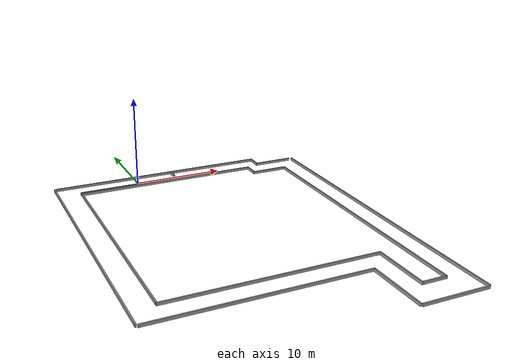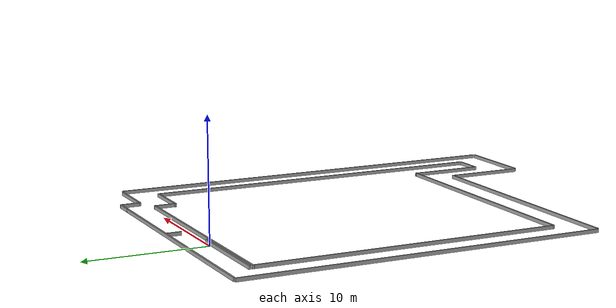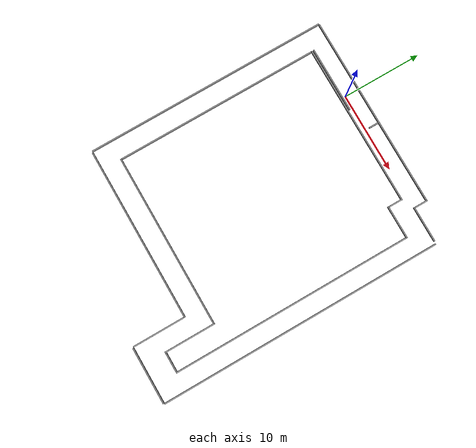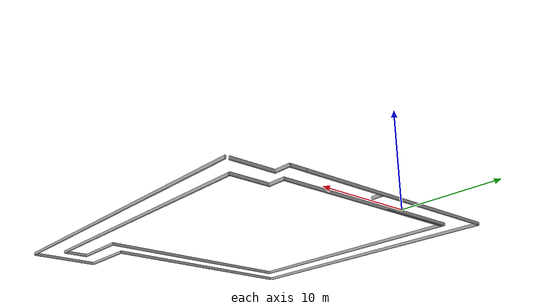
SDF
<?xml version='1.0'?>
<sdf version='1.6'>
  <model name='unit_box_map7'>
    <link name='link'>
      <pose frame=''>3.45997 -0.623895 0 0 -0 0</pose>
      <inertial>
        <mass>1</mass>
        <inertia>
          <ixx>0.166667</ixx>
          <ixy>0</ixy>
          <ixz>0</ixz>
          <iyy>0.166667</iyy>
          <iyz>0</iyz>
          <izz>0.166667</izz>
        </inertia>
        <pose frame=''>0 0 0 0 -0 0</pose>
      </inertial>
      <self_collide>0</self_collide>
      <kinematic>0</kinematic>
      <visual name='visual'>
        <geometry>
          <box>
            <size>20.4 0.15 0.3</size>
          </box>
        </geometry>
        <material>
          <script>
            <name>Gazebo/Grey</name>
            <uri>file://media/materials/scripts/gazebo.material</uri>
          </script>
          <ambient>0.3 0.3 0.3 1</ambient>
          <diffuse>0.7 0.7 0.7 1</diffuse>
          <specular>0.01 0.01 0.01 1</specular>
          <emissive>0 0 0 1</emissive>
          <shader type='vertex'>
            <normal_map>__default__</normal_map>
          </shader>
        </material>
        <pose frame=''>0 0 0 0 -0 0</pose>
        <cast_shadows>1</cast_shadows>
        <transparency>0</transparency>
      </visual>
      <collision name='collision'>
        <laser_retro>0</laser_retro>
        <max_contacts>10</max_contacts>
        <pose frame=''>0 0 0 0 -0 0</pose>
        <geometry>
          <box>
            <size>20.4 0.15 0.3</size>
          </box>
        </geometry>
        <surface>
          <friction>
            <ode>
              <mu>1</mu>
              <mu2>1</mu2>
              <fdir1>0 0 0</fdir1>
              <slip1>0</slip1>
              <slip2>0</slip2>
            </ode>
            <torsional>
              <coefficient>1</coefficient>
              <patch_radius>0</patch_radius>
              <surface_radius>0</surface_radius>
              <use_patch_radius>1</use_patch_radius>
              <ode>
                <slip>0</slip>
              </ode>
            </torsional>
          </friction>
          <bounce>
            <restitution_coefficient>0</restitution_coefficient>
            <threshold>1e+06</threshold>
          </bounce>
          <contact>
            <collide_without_contact>0</collide_without_contact>
            <collide_without_contact_bitmask>1</collide_without_contact_bitmask>
            <collide_bitmask>1</collide_bitmask>
            <ode>
              <soft_cfm>0</soft_cfm>
              <soft_erp>0.2</soft_erp>
              <kp>1e+13</kp>
              <kd>1</kd>
              <max_vel>0.01</max_vel>
              <min_depth>0</min_depth>
            </ode>
            <bullet>
              <split_impulse>1</split_impulse>
              <split_impulse_penetration_threshold>-0.01</split_impulse_penetration_threshold>
              <soft_cfm>0</soft_cfm>
              <soft_erp>0.2</soft_erp>
              <kp>1e+13</kp>
              <kd>1</kd>
            </bullet>
          </contact>
        </surface>
      </collision>
    </link>
    <link name='link_clone'>
      <pose frame=''>2.29271 1.80543 0 0 -0 0</pose>
      <inertial>
        <mass>1</mass>
        <inertia>
          <ixx>0.166667</ixx>
          <ixy>0</ixy>
          <ixz>0</ixz>
          <iyy>0.166667</iyy>
          <iyz>0</iyz>
          <izz>0.166667</izz>
        </inertia>
        <pose frame=''>0 0 0 0 -0 0</pose>
      </inertial>
      <self_collide>0</self_collide>
      <kinematic>0</kinematic>
      <visual name='visual'>
        <geometry>
          <box>
            <size>22.7 0.15 0.3</size>
          </box>
        </geometry>
        <material>
          <script>
            <name>Gazebo/Grey</name>
            <uri>file://media/materials/scripts/gazebo.material</uri>
          </script>
          <ambient>0.3 0.3 0.3 1</ambient>
          <diffuse>0.7 0.7 0.7 1</diffuse>
          <specular>0.01 0.01 0.01 1</specular>
          <emissive>0 0 0 1</emissive>
          <shader type='vertex'>
            <normal_map>__default__</normal_map>
          </shader>
        </material>
        <pose frame=''>0 0 0 0 -0 0</pose>
        <cast_shadows>1</cast_shadows>
        <transparency>0</transparency>
      </visual>
      <collision name='collision'>
        <laser_retro>0</laser_retro>
        <max_contacts>10</max_contacts>
        <pose frame=''>0 0 0 0 -0 0</pose>
        <geometry>
          <box>
            <size>22.7 0.15 0.3</size>
          </box>
        </geometry>
        <surface>
          <friction>
            <ode>
              <mu>1</mu>
              <mu2>1</mu2>
              <fdir1>0 0 0</fdir1>
              <slip1>0</slip1>
              <slip2>0</slip2>
            </ode>
            <torsional>
              <coefficient>1</coefficient>
              <patch_radius>0</patch_radius>
              <surface_radius>0</surface_radius>
              <use_patch_radius>1</use_patch_radius>
              <ode>
                <slip>0</slip>
              </ode>
            </torsional>
          </friction>
          <bounce>
            <restitution_coefficient>0</restitution_coefficient>
            <threshold>1e+06</threshold>
          </bounce>
          <contact>
            <collide_without_contact>0</collide_without_contact>
            <collide_without_contact_bitmask>1</collide_without_contact_bitmask>
            <collide_bitmask>1</collide_bitmask>
            <ode>
              <soft_cfm>0</soft_cfm>
              <soft_erp>0.2</soft_erp>
              <kp>1e+13</kp>
              <kd>1</kd>
              <max_vel>0.01</max_vel>
              <min_depth>0</min_depth>
            </ode>
            <bullet>
              <split_impulse>1</split_impulse>
              <split_impulse_penetration_threshold>-0.01</split_impulse_penetration_threshold>
              <soft_cfm>0</soft_cfm>
              <soft_erp>0.2</soft_erp>
              <kp>1e+13</kp>
              <kd>1</kd>
            </bullet>
          </contact>
        </surface>
      </collision>
    </link>
    <link name='link_clone_0'>
      <pose frame=''>-2.56945 -0.360296 0 0 -0 0</pose>
      <inertial>
        <mass>1</mass>
        <inertia>
          <ixx>0.166667</ixx>
          <ixy>0</ixy>
          <ixz>0</ixz>
          <iyy>0.166667</iyy>
          <iyz>0</iyz>
          <izz>0.166667</izz>
        </inertia>
        <pose frame=''>0 0 0 0 -0 0</pose>
      </inertial>
      <self_collide>0</self_collide>
      <kinematic>0</kinematic>
      <visual name='visual'>
        <geometry>
          <box>
            <size>8.35 0.15 0.3</size>
          </box>
        </geometry>
        <material>
          <script>
            <name>Gazebo/Grey</name>
            <uri>file://media/materials/scripts/gazebo.material</uri>
          </script>
          <ambient>0.3 0.3 0.3 1</ambient>
          <diffuse>0.7 0.7 0.7 1</diffuse>
          <specular>0.01 0.01 0.01 1</specular>
          <emissive>0 0 0 1</emissive>
          <shader type='vertex'>
            <normal_map>__default__</normal_map>
          </shader>
        </material>
        <pose frame=''>0 0 0 0 -0 0</pose>
        <cast_shadows>1</cast_shadows>
        <transparency>0</transparency>
      </visual>
      <collision name='collision'>
        <laser_retro>0</laser_retro>
        <max_contacts>10</max_contacts>
        <pose frame=''>0 0 0 0 -0 0</pose>
        <geometry>
          <box>
            <size>8.35 0.15 0.3</size>
          </box>
        </geometry>
        <surface>
          <friction>
            <ode>
              <mu>1</mu>
              <mu2>1</mu2>
              <fdir1>0 0 0</fdir1>
              <slip1>0</slip1>
              <slip2>0</slip2>
            </ode>
            <torsional>
              <coefficient>1</coefficient>
              <patch_radius>0</patch_radius>
              <surface_radius>0</surface_radius>
              <use_patch_radius>1</use_patch_radius>
              <ode>
                <slip>0</slip>
              </ode>
            </torsional>
          </friction>
          <bounce>
            <restitution_coefficient>0</restitution_coefficient>
            <threshold>1e+06</threshold>
          </bounce>
          <contact>
            <collide_without_contact>0</collide_without_contact>
            <collide_without_contact_bitmask>1</collide_without_contact_bitmask>
            <collide_bitmask>1</collide_bitmask>
            <ode>
              <soft_cfm>0</soft_cfm>
              <soft_erp>0.2</soft_erp>
              <kp>1e+13</kp>
              <kd>1</kd>
              <max_vel>0.01</max_vel>
              <min_depth>0</min_depth>
            </ode>
            <bullet>
              <split_impulse>1</split_impulse>
              <split_impulse_penetration_threshold>-0.01</split_impulse_penetration_threshold>
              <soft_cfm>0</soft_cfm>
              <soft_erp>0.2</soft_erp>
              <kp>1e+13</kp>
              <kd>1</kd>
            </bullet>
          </contact>
        </surface>
      </collision>
    </link>
    <link name='link_clone_0_clone'>
      <pose frame=''>4.6261 1.11574 0 0 -0 1.5707</pose>
      <inertial>
        <mass>1</mass>
        <inertia>
          <ixx>0.166667</ixx>
          <ixy>0</ixy>
          <ixz>0</ixz>
          <iyy>0.166667</iyy>
          <iyz>0</iyz>
          <izz>0.166667</izz>
        </inertia>
        <pose frame=''>0 0 0 0 -0 0</pose>
      </inertial>
      <self_collide>0</self_collide>
      <kinematic>0</kinematic>
      <visual name='visual'>
        <geometry>
          <box>
            <size>1.22 0.15 0.3</size>
          </box>
        </geometry>
        <material>
          <script>
            <name>Gazebo/Grey</name>
            <uri>file://media/materials/scripts/gazebo.material</uri>
          </script>
          <ambient>0.3 0.3 0.3 1</ambient>
          <diffuse>0.7 0.7 0.7 1</diffuse>
          <specular>0.01 0.01 0.01 1</specular>
          <emissive>0 0 0 1</emissive>
          <shader type='vertex'>
            <normal_map>__default__</normal_map>
          </shader>
        </material>
        <pose frame=''>0 0 0 0 -0 0</pose>
        <cast_shadows>1</cast_shadows>
        <transparency>0</transparency>
      </visual>
      <collision name='collision'>
        <laser_retro>0</laser_retro>
        <max_contacts>10</max_contacts>
        <pose frame=''>0 0 0 0 -0 0</pose>
        <geometry>
          <box>
            <size>1.22 0.15 0.3</size>
          </box>
        </geometry>
        <surface>
          <friction>
            <ode>
              <mu>1</mu>
              <mu2>1</mu2>
              <fdir1>0 0 0</fdir1>
              <slip1>0</slip1>
              <slip2>0</slip2>
            </ode>
            <torsional>
              <coefficient>1</coefficient>
              <patch_radius>0</patch_radius>
              <surface_radius>0</surface_radius>
              <use_patch_radius>1</use_patch_radius>
              <ode>
                <slip>0</slip>
              </ode>
            </torsional>
          </friction>
          <bounce>
            <restitution_coefficient>0</restitution_coefficient>
            <threshold>1e+06</threshold>
          </bounce>
          <contact>
            <collide_without_contact>0</collide_without_contact>
            <collide_without_contact_bitmask>1</collide_without_contact_bitmask>
            <collide_bitmask>1</collide_bitmask>
            <ode>
              <soft_cfm>0</soft_cfm>
              <soft_erp>0.2</soft_erp>
              <kp>1e+13</kp>
              <kd>1</kd>
              <max_vel>0.01</max_vel>
              <min_depth>0</min_depth>
            </ode>
            <bullet>
              <split_impulse>1</split_impulse>
              <split_impulse_penetration_threshold>-0.01</split_impulse_penetration_threshold>
              <soft_cfm>0</soft_cfm>
              <soft_erp>0.2</soft_erp>
              <kp>1e+13</kp>
              <kd>1</kd>
            </bullet>
          </contact>
        </surface>
      </collision>
    </link>
    <link name='link_clone_0_clone_0'>
      <pose frame=''>4.18838 -26.4536 0 0 -0 0</pose>
      <inertial>
        <mass>1</mass>
        <inertia>
          <ixx>0.166667</ixx>
          <ixy>0</ixy>
          <ixz>0</ixz>
          <iyy>0.166667</iyy>
          <iyz>0</iyz>
          <izz>0.166667</izz>
        </inertia>
        <pose frame=''>0 0 0 0 -0 0</pose>
      </inertial>
      <self_collide>0</self_collide>
      <kinematic>0</kinematic>
      <gravity>1</gravity>
      <visual name='visual'>
        <geometry>
          <box>
            <size>21.8 0.15 0.3</size>
          </box>
        </geometry>
        <material>
          <script>
            <name>Gazebo/Grey</name>
            <uri>file://media/materials/scripts/gazebo.material</uri>
          </script>
          <ambient>0.3 0.3 0.3 1</ambient>
          <diffuse>0.7 0.7 0.7 1</diffuse>
          <specular>0.01 0.01 0.01 1</specular>
          <emissive>0 0 0 1</emissive>
          <shader type='vertex'>
            <normal_map>__default__</normal_map>
          </shader>
        </material>
        <pose frame=''>0 0 0 0 -0 0</pose>
        <cast_shadows>1</cast_shadows>
        <transparency>0</transparency>
      </visual>
      <collision name='collision'>
        <laser_retro>0</laser_retro>
        <max_contacts>10</max_contacts>
        <pose frame=''>0 0 0 0 -0 0</pose>
        <geometry>
          <box>
            <size>21.8 0.15 0.3</size>
          </box>
        </geometry>
        <surface>
          <friction>
            <ode>
              <mu>1</mu>
              <mu2>1</mu2>
              <fdir1>0 0 0</fdir1>
              <slip1>0</slip1>
              <slip2>0</slip2>
            </ode>
            <torsional>
              <coefficient>1</coefficient>
              <patch_radius>0</patch_radius>
              <surface_radius>0</surface_radius>
              <use_patch_radius>1</use_patch_radius>
              <ode>
                <slip>0</slip>
              </ode>
            </torsional>
          </friction>
          <bounce>
            <restitution_coefficient>0</restitution_coefficient>
            <threshold>1e+06</threshold>
          </bounce>
          <contact>
            <collide_without_contact>0</collide_without_contact>
            <collide_without_contact_bitmask>1</collide_without_contact_bitmask>
            <collide_bitmask>1</collide_bitmask>
            <ode>
              <soft_cfm>0</soft_cfm>
              <soft_erp>0.2</soft_erp>
              <kp>1e+13</kp>
              <kd>1</kd>
              <max_vel>0.01</max_vel>
              <min_depth>0</min_depth>
            </ode>
            <bullet>
              <split_impulse>1</split_impulse>
              <split_impulse_penetration_threshold>-0.01</split_impulse_penetration_threshold>
              <soft_cfm>0</soft_cfm>
              <soft_erp>0.2</soft_erp>
              <kp>1e+13</kp>
              <kd>1</kd>
            </bullet>
          </contact>
        </surface>
      </collision>
    </link>
    <link name='link_clone_0_clone_0_clone'>
      <pose frame=''>14.4458 1.80734 0 0 -0 0</pose>
      <inertial>
        <mass>1</mass>
        <inertia>
          <ixx>0.166667</ixx>
          <ixy>0</ixy>
          <ixz>0</ixz>
          <iyy>0.166667</iyy>
          <iyz>0</iyz>
          <izz>0.166667</izz>
        </inertia>
        <pose frame=''>0 0 0 0 -0 0</pose>
      </inertial>
      <self_collide>0</self_collide>
      <kinematic>0</kinematic>
      <visual name='visual'>
        <geometry>
          <box>
            <size>1.6 0.15 0.3</size>
          </box>
        </geometry>
        <material>
          <script>
            <name>Gazebo/Grey</name>
            <uri>file://media/materials/scripts/gazebo.material</uri>
          </script>
          <ambient>0.3 0.3 0.3 1</ambient>
          <diffuse>0.7 0.7 0.7 1</diffuse>
          <specular>0.01 0.01 0.01 1</specular>
          <emissive>0 0 0 1</emissive>
          <shader type='vertex'>
            <normal_map>__default__</normal_map>
          </shader>
        </material>
        <pose frame=''>0 0 0 0 -0 0</pose>
        <cast_shadows>1</cast_shadows>
        <transparency>0</transparency>
      </visual>
      <collision name='collision'>
        <laser_retro>0</laser_retro>
        <max_contacts>10</max_contacts>
        <pose frame=''>0 0 0 0 -0 0</pose>
        <geometry>
          <box>
            <size>1.6 0.15 0.3</size>
          </box>
        </geometry>
        <surface>
          <friction>
            <ode>
              <mu>1</mu>
              <mu2>1</mu2>
              <fdir1>0 0 0</fdir1>
              <slip1>0</slip1>
              <slip2>0</slip2>
            </ode>
            <torsional>
              <coefficient>1</coefficient>
              <patch_radius>0</patch_radius>
              <surface_radius>0</surface_radius>
              <use_patch_radius>1</use_patch_radius>
              <ode>
                <slip>0</slip>
              </ode>
            </torsional>
          </friction>
          <bounce>
            <restitution_coefficient>0</restitution_coefficient>
            <threshold>1e+06</threshold>
          </bounce>
          <contact>
            <collide_without_contact>0</collide_without_contact>
            <collide_without_contact_bitmask>1</collide_without_contact_bitmask>
            <collide_bitmask>1</collide_bitmask>
            <ode>
              <soft_cfm>0</soft_cfm>
              <soft_erp>0.2</soft_erp>
              <kp>1e+13</kp>
              <kd>1</kd>
              <max_vel>0.01</max_vel>
              <min_depth>0</min_depth>
            </ode>
            <bullet>
              <split_impulse>1</split_impulse>
              <split_impulse_penetration_threshold>-0.01</split_impulse_penetration_threshold>
              <soft_cfm>0</soft_cfm>
              <soft_erp>0.2</soft_erp>
              <kp>1e+13</kp>
              <kd>1</kd>
            </bullet>
          </contact>
        </surface>
      </collision>
    </link>
    <link name='link_clone_0_clone_0_clone_clone'>
      <pose frame=''>15.7693 -2.40821 0 0 -0 0</pose>
      <inertial>
        <mass>1</mass>
        <inertia>
          <ixx>0.166667</ixx>
          <ixy>0</ixy>
          <ixz>0</ixz>
          <iyy>0.166667</iyy>
          <iyz>0</iyz>
          <izz>0.166667</izz>
        </inertia>
        <pose frame=''>0 0 0 0 -0 0</pose>
      </inertial>
      <self_collide>0</self_collide>
      <kinematic>0</kinematic>
      <visual name='visual'>
        <geometry>
          <box>
            <size>4.21 0.15 0.3</size>
          </box>
        </geometry>
        <material>
          <script>
            <name>Gazebo/Grey</name>
            <uri>file://media/materials/scripts/gazebo.material</uri>
          </script>
          <ambient>0.3 0.3 0.3 1</ambient>
          <diffuse>0.7 0.7 0.7 1</diffuse>
          <specular>0.01 0.01 0.01 1</specular>
          <emissive>0 0 0 1</emissive>
          <shader type='vertex'>
            <normal_map>__default__</normal_map>
          </shader>
        </material>
        <pose frame=''>0 0 0 0 -0 0</pose>
        <cast_shadows>1</cast_shadows>
        <transparency>0</transparency>
      </visual>
      <collision name='collision'>
        <laser_retro>0</laser_retro>
        <max_contacts>10</max_contacts>
        <pose frame=''>0 0 0 0 -0 0</pose>
        <geometry>
          <box>
            <size>4.21 0.15 0.3</size>
          </box>
        </geometry>
        <surface>
          <friction>
            <ode>
              <mu>1</mu>
              <mu2>1</mu2>
              <fdir1>0 0 0</fdir1>
              <slip1>0</slip1>
              <slip2>0</slip2>
            </ode>
            <torsional>
              <coefficient>1</coefficient>
              <patch_radius>0</patch_radius>
              <surface_radius>0</surface_radius>
              <use_patch_radius>1</use_patch_radius>
              <ode>
                <slip>0</slip>
              </ode>
            </torsional>
          </friction>
          <bounce>
            <restitution_coefficient>0</restitution_coefficient>
            <threshold>1e+06</threshold>
          </bounce>
          <contact>
            <collide_without_contact>0</collide_without_contact>
            <collide_without_contact_bitmask>1</collide_without_contact_bitmask>
            <collide_bitmask>1</collide_bitmask>
            <ode>
              <soft_cfm>0</soft_cfm>
              <soft_erp>0.2</soft_erp>
              <kp>1e+13</kp>
              <kd>1</kd>
              <max_vel>0.01</max_vel>
              <min_depth>0</min_depth>
            </ode>
            <bullet>
              <split_impulse>1</split_impulse>
              <split_impulse_penetration_threshold>-0.01</split_impulse_penetration_threshold>
              <soft_cfm>0</soft_cfm>
              <soft_erp>0.2</soft_erp>
              <kp>1e+13</kp>
              <kd>1</kd>
            </bullet>
          </contact>
        </surface>
      </collision>
    </link>
    <link name='link_clone_0_clone_0_clone_clone_clone'>
      <pose frame=''>17.5173 0.14167 0 0 -0 0</pose>
      <inertial>
        <mass>0.716393</mass>
        <inertia>
          <ixx>0.119399</ixx>
          <ixy>0</ixy>
          <ixz>0</ixz>
          <iyy>0.0903386</iyy>
          <iyz>0</iyz>
          <izz>0.0903386</izz>
        </inertia>
        <pose frame=''>0 0 0 0 -0 0</pose>
      </inertial>
      <self_collide>0</self_collide>
      <kinematic>0</kinematic>
      <visual name='visual'>
        <geometry>
          <box>
            <size>4.53477 0.15 0.3</size>
          </box>
        </geometry>
        <material>
          <script>
            <name>Gazebo/Grey</name>
            <uri>file://media/materials/scripts/gazebo.material</uri>
          </script>
          <ambient>0.3 0.3 0.3 1</ambient>
          <diffuse>0.7 0.7 0.7 1</diffuse>
          <specular>0.01 0.01 0.01 1</specular>
          <emissive>0 0 0 1</emissive>
          <shader type='vertex'>
            <normal_map>__default__</normal_map>
          </shader>
        </material>
        <pose frame=''>0 0 0 0 -0 0</pose>
        <cast_shadows>1</cast_shadows>
        <transparency>0</transparency>
      </visual>
      <collision name='collision'>
        <laser_retro>0</laser_retro>
        <max_contacts>10</max_contacts>
        <pose frame=''>0 0 0 0 -0 0</pose>
        <geometry>
          <box>
            <size>4.53477 0.15 0.3</size>
          </box>
        </geometry>
        <surface>
          <friction>
            <ode>
              <mu>1</mu>
              <mu2>1</mu2>
              <fdir1>0 0 0</fdir1>
              <slip1>0</slip1>
              <slip2>0</slip2>
            </ode>
            <torsional>
              <coefficient>1</coefficient>
              <patch_radius>0</patch_radius>
              <surface_radius>0</surface_radius>
              <use_patch_radius>1</use_patch_radius>
              <ode>
                <slip>0</slip>
              </ode>
            </torsional>
          </friction>
          <bounce>
            <restitution_coefficient>0</restitution_coefficient>
            <threshold>1e+06</threshold>
          </bounce>
          <contact>
            <collide_without_contact>0</collide_without_contact>
            <collide_without_contact_bitmask>1</collide_without_contact_bitmask>
            <collide_bitmask>1</collide_bitmask>
            <ode>
              <soft_cfm>0</soft_cfm>
              <soft_erp>0.2</soft_erp>
              <kp>1e+13</kp>
              <kd>1</kd>
              <max_vel>0.01</max_vel>
              <min_depth>0</min_depth>
            </ode>
            <bullet>
              <split_impulse>1</split_impulse>
              <split_impulse_penetration_threshold>-0.01</split_impulse_penetration_threshold>
              <soft_cfm>0</soft_cfm>
              <soft_erp>0.2</soft_erp>
              <kp>1e+13</kp>
              <kd>1</kd>
            </bullet>
          </contact>
        </surface>
      </collision>
    </link>
    <link name='link_clone_0_clone_0_clone_clone_clone_0'>
      <pose frame=''>16.4921 -35.6942 0 0 -0 0</pose>
      <inertial>
        <mass>1</mass>
        <inertia>
          <ixx>0.166667</ixx>
          <ixy>0</ixy>
          <ixz>0</ixz>
          <iyy>0.166667</iyy>
          <iyz>0</iyz>
          <izz>0.166667</izz>
        </inertia>
        <pose frame=''>0 0 0 0 -0 0</pose>
      </inertial>
      <self_collide>0</self_collide>
      <kinematic>0</kinematic>
      <visual name='visual'>
        <geometry>
          <box>
            <size>7.1 0.15 0.3</size>
          </box>
        </geometry>
        <material>
          <script>
            <name>Gazebo/Grey</name>
            <uri>file://media/materials/scripts/gazebo.material</uri>
          </script>
          <ambient>0.3 0.3 0.3 1</ambient>
          <diffuse>0.7 0.7 0.7 1</diffuse>
          <specular>0.01 0.01 0.01 1</specular>
          <emissive>0 0 0 1</emissive>
          <shader type='vertex'>
            <normal_map>__default__</normal_map>
          </shader>
        </material>
        <pose frame=''>0 0 0 0 -0 0</pose>
        <cast_shadows>1</cast_shadows>
        <transparency>0</transparency>
      </visual>
      <collision name='collision'>
        <laser_retro>0</laser_retro>
        <max_contacts>10</max_contacts>
        <pose frame=''>0 0 0 0 -0 0</pose>
        <geometry>
          <box>
            <size>7.1 0.15 0.3</size>
          </box>
        </geometry>
        <surface>
          <friction>
            <ode>
              <mu>1</mu>
              <mu2>1</mu2>
              <fdir1>0 0 0</fdir1>
              <slip1>0</slip1>
              <slip2>0</slip2>
            </ode>
            <torsional>
              <coefficient>1</coefficient>
              <patch_radius>0</patch_radius>
              <surface_radius>0</surface_radius>
              <use_patch_radius>1</use_patch_radius>
              <ode>
                <slip>0</slip>
              </ode>
            </torsional>
          </friction>
          <bounce>
            <restitution_coefficient>0</restitution_coefficient>
            <threshold>1e+06</threshold>
          </bounce>
          <contact>
            <collide_without_contact>0</collide_without_contact>
            <collide_without_contact_bitmask>1</collide_without_contact_bitmask>
            <collide_bitmask>1</collide_bitmask>
            <ode>
              <soft_cfm>0</soft_cfm>
              <soft_erp>0.2</soft_erp>
              <kp>1e+13</kp>
              <kd>1</kd>
              <max_vel>0.01</max_vel>
              <min_depth>0</min_depth>
            </ode>
            <bullet>
              <split_impulse>1</split_impulse>
              <split_impulse_penetration_threshold>-0.01</split_impulse_penetration_threshold>
              <soft_cfm>0</soft_cfm>
              <soft_erp>0.2</soft_erp>
              <kp>1e+13</kp>
              <kd>1</kd>
            </bullet>
          </contact>
        </surface>
      </collision>
    </link>
    <link name='link_clone_0_clone_0_clone_clone_clone_0_clone'>
      <pose frame=''>16.4962 -32.7416 0 0 -0 0</pose>
      <inertial>
        <mass>1.13862</mass>
        <inertia>
          <ixx>0.18977</ixx>
          <ixy>0</ixy>
          <ixz>0</ixz>
          <iyy>0.217899</iyy>
          <iyz>0</iyz>
          <izz>0.217899</izz>
        </inertia>
        <pose frame=''>0 0 0 0 -0 0</pose>
      </inertial>
      <self_collide>0</self_collide>
      <kinematic>0</kinematic>
      <gravity>1</gravity>
      <visual name='visual'>
        <geometry>
          <box>
            <size>2.40248 0.15 0.3</size>
          </box>
        </geometry>
        <material>
          <script>
            <name>Gazebo/Grey</name>
            <uri>file://media/materials/scripts/gazebo.material</uri>
          </script>
          <ambient>0.3 0.3 0.3 1</ambient>
          <diffuse>0.7 0.7 0.7 1</diffuse>
          <specular>0.01 0.01 0.01 1</specular>
          <emissive>0 0 0 1</emissive>
          <shader type='vertex'>
            <normal_map>__default__</normal_map>
          </shader>
        </material>
        <pose frame=''>0 0 0 0 -0 0</pose>
        <cast_shadows>1</cast_shadows>
        <transparency>0</transparency>
      </visual>
      <collision name='collision'>
        <laser_retro>0</laser_retro>
        <max_contacts>10</max_contacts>
        <pose frame=''>0 0 0 0 -0 0</pose>
        <geometry>
          <box>
            <size>2.40248 0.15 0.3</size>
          </box>
        </geometry>
        <surface>
          <friction>
            <ode>
              <mu>1</mu>
              <mu2>1</mu2>
              <fdir1>0 0 0</fdir1>
              <slip1>0</slip1>
              <slip2>0</slip2>
            </ode>
            <torsional>
              <coefficient>1</coefficient>
              <patch_radius>0</patch_radius>
              <surface_radius>0</surface_radius>
              <use_patch_radius>1</use_patch_radius>
              <ode>
                <slip>0</slip>
              </ode>
            </torsional>
          </friction>
          <bounce>
            <restitution_coefficient>0</restitution_coefficient>
            <threshold>1e+06</threshold>
          </bounce>
          <contact>
            <collide_without_contact>0</collide_without_contact>
            <collide_without_contact_bitmask>1</collide_without_contact_bitmask>
            <collide_bitmask>1</collide_bitmask>
            <ode>
              <soft_cfm>0</soft_cfm>
              <soft_erp>0.2</soft_erp>
              <kp>1e+13</kp>
              <kd>1</kd>
              <max_vel>0.01</max_vel>
              <min_depth>0</min_depth>
            </ode>
            <bullet>
              <split_impulse>1</split_impulse>
              <split_impulse_penetration_threshold>-0.01</split_impulse_penetration_threshold>
              <soft_cfm>0</soft_cfm>
              <soft_erp>0.2</soft_erp>
              <kp>1e+13</kp>
              <kd>1</kd>
            </bullet>
          </contact>
        </surface>
      </collision>
    </link>
    <link name='link_clone_0_clone_clone'>
      <pose frame=''>-9.18362 -13.5485 0 0 -0 1.5707</pose>
      <inertial>
        <mass>1</mass>
        <inertia>
          <ixx>0.166667</ixx>
          <ixy>0</ixy>
          <ixz>0</ixz>
          <iyy>0.166667</iyy>
          <iyz>0</iyz>
          <izz>0.166667</izz>
        </inertia>
        <pose frame=''>0 0 0 0 -0 0</pose>
      </inertial>
      <self_collide>0</self_collide>
      <kinematic>0</kinematic>
      <gravity>1</gravity>
      <visual name='visual'>
        <geometry>
          <box>
            <size>30.7 0.15 0.3</size>
          </box>
        </geometry>
        <material>
          <script>
            <name>Gazebo/Grey</name>
            <uri>file://media/materials/scripts/gazebo.material</uri>
          </script>
          <ambient>0.3 0.3 0.3 1</ambient>
          <diffuse>0.7 0.7 0.7 1</diffuse>
          <specular>0.01 0.01 0.01 1</specular>
          <emissive>0 0 0 1</emissive>
          <shader type='vertex'>
            <normal_map>__default__</normal_map>
          </shader>
        </material>
        <pose frame=''>0 0 0 0 -0 0</pose>
        <cast_shadows>1</cast_shadows>
        <transparency>0</transparency>
      </visual>
      <collision name='collision'>
        <laser_retro>0</laser_retro>
        <max_contacts>10</max_contacts>
        <pose frame=''>0 0 0 0 -0 0</pose>
        <geometry>
          <box>
            <size>30.7 0.15 0.3</size>
          </box>
        </geometry>
        <surface>
          <friction>
            <ode>
              <mu>1</mu>
              <mu2>1</mu2>
              <fdir1>0 0 0</fdir1>
              <slip1>0</slip1>
              <slip2>0</slip2>
            </ode>
            <torsional>
              <coefficient>1</coefficient>
              <patch_radius>0</patch_radius>
              <surface_radius>0</surface_radius>
              <use_patch_radius>1</use_patch_radius>
              <ode>
                <slip>0</slip>
              </ode>
            </torsional>
          </friction>
          <bounce>
            <restitution_coefficient>0</restitution_coefficient>
            <threshold>1e+06</threshold>
          </bounce>
          <contact>
            <collide_without_contact>0</collide_without_contact>
            <collide_without_contact_bitmask>1</collide_without_contact_bitmask>
            <collide_bitmask>1</collide_bitmask>
            <ode>
              <soft_cfm>0</soft_cfm>
              <soft_erp>0.2</soft_erp>
              <kp>1e+13</kp>
              <kd>1</kd>
              <max_vel>0.01</max_vel>
              <min_depth>0</min_depth>
            </ode>
            <bullet>
              <split_impulse>1</split_impulse>
              <split_impulse_penetration_threshold>-0.01</split_impulse_penetration_threshold>
              <soft_cfm>0</soft_cfm>
              <soft_erp>0.2</soft_erp>
              <kp>1e+13</kp>
              <kd>1</kd>
            </bullet>
          </contact>
        </surface>
      </collision>
    </link>
    <link name='link_clone_0_clone_clone_0'>
      <pose frame=''>15.323 1.0468 0 0 -0 1.5707</pose>
      <inertial>
        <mass>1</mass>
        <inertia>
          <ixx>0.166667</ixx>
          <ixy>0</ixy>
          <ixz>0</ixz>
          <iyy>0.166667</iyy>
          <iyz>0</iyz>
          <izz>0.166667</izz>
        </inertia>
        <pose frame=''>0 0 0 0 -0 0</pose>
      </inertial>
      <self_collide>0</self_collide>
      <kinematic>0</kinematic>
      <visual name='visual'>
        <geometry>
          <box>
            <size>1.65 0.15 0.3</size>
          </box>
        </geometry>
        <material>
          <script>
            <name>Gazebo/Grey</name>
            <uri>file://media/materials/scripts/gazebo.material</uri>
          </script>
          <ambient>0.3 0.3 0.3 1</ambient>
          <diffuse>0.7 0.7 0.7 1</diffuse>
          <specular>0.01 0.01 0.01 1</specular>
          <emissive>0 0 0 1</emissive>
          <shader type='vertex'>
            <normal_map>__default__</normal_map>
          </shader>
        </material>
        <pose frame=''>0 0 0 0 -0 0</pose>
        <cast_shadows>1</cast_shadows>
        <transparency>0</transparency>
      </visual>
      <collision name='collision'>
        <laser_retro>0</laser_retro>
        <max_contacts>10</max_contacts>
        <pose frame=''>0 0 0 0 -0 0</pose>
        <geometry>
          <box>
            <size>1.65 0.15 0.3</size>
          </box>
        </geometry>
        <surface>
          <friction>
            <ode>
              <mu>1</mu>
              <mu2>1</mu2>
              <fdir1>0 0 0</fdir1>
              <slip1>0</slip1>
              <slip2>0</slip2>
            </ode>
            <torsional>
              <coefficient>1</coefficient>
              <patch_radius>0</patch_radius>
              <surface_radius>0</surface_radius>
              <use_patch_radius>1</use_patch_radius>
              <ode>
                <slip>0</slip>
              </ode>
            </torsional>
          </friction>
          <bounce>
            <restitution_coefficient>0</restitution_coefficient>
            <threshold>1e+06</threshold>
          </bounce>
          <contact>
            <collide_without_contact>0</collide_without_contact>
            <collide_without_contact_bitmask>1</collide_without_contact_bitmask>
            <collide_bitmask>1</collide_bitmask>
            <ode>
              <soft_cfm>0</soft_cfm>
              <soft_erp>0.2</soft_erp>
              <kp>1e+13</kp>
              <kd>1</kd>
              <max_vel>0.01</max_vel>
              <min_depth>0</min_depth>
            </ode>
            <bullet>
              <split_impulse>1</split_impulse>
              <split_impulse_penetration_threshold>-0.01</split_impulse_penetration_threshold>
              <soft_cfm>0</soft_cfm>
              <soft_erp>0.2</soft_erp>
              <kp>1e+13</kp>
              <kd>1</kd>
            </bullet>
          </contact>
        </surface>
      </collision>
    </link>
    <link name='link_clone_0_clone_clone_0_clone'>
      <pose frame=''>13.7445 -1.43771 0 0 -0 1.5707</pose>
      <inertial>
        <mass>1</mass>
        <inertia>
          <ixx>0.166667</ixx>
          <ixy>0</ixy>
          <ixz>0</ixz>
          <iyy>0.166667</iyy>
          <iyz>0</iyz>
          <izz>0.166667</izz>
        </inertia>
        <pose frame=''>0 0 0 0 -0 0</pose>
      </inertial>
      <self_collide>0</self_collide>
      <kinematic>0</kinematic>
      <visual name='visual'>
        <geometry>
          <box>
            <size>1.78 0.15 0.3</size>
          </box>
        </geometry>
        <material>
          <script>
            <name>Gazebo/Grey</name>
            <uri>file://media/materials/scripts/gazebo.material</uri>
          </script>
          <ambient>0.3 0.3 0.3 1</ambient>
          <diffuse>0.7 0.7 0.7 1</diffuse>
          <specular>0.01 0.01 0.01 1</specular>
          <emissive>0 0 0 1</emissive>
          <shader type='vertex'>
            <normal_map>__default__</normal_map>
          </shader>
        </material>
        <pose frame=''>0 0 0 0 -0 0</pose>
        <cast_shadows>1</cast_shadows>
        <transparency>0</transparency>
      </visual>
      <collision name='collision'>
        <laser_retro>0</laser_retro>
        <max_contacts>10</max_contacts>
        <pose frame=''>0 0 0 0 -0 0</pose>
        <geometry>
          <box>
            <size>1.78 0.15 0.3</size>
          </box>
        </geometry>
        <surface>
          <friction>
            <ode>
              <mu>1</mu>
              <mu2>1</mu2>
              <fdir1>0 0 0</fdir1>
              <slip1>0</slip1>
              <slip2>0</slip2>
            </ode>
            <torsional>
              <coefficient>1</coefficient>
              <patch_radius>0</patch_radius>
              <surface_radius>0</surface_radius>
              <use_patch_radius>1</use_patch_radius>
              <ode>
                <slip>0</slip>
              </ode>
            </torsional>
          </friction>
          <bounce>
            <restitution_coefficient>0</restitution_coefficient>
            <threshold>1e+06</threshold>
          </bounce>
          <contact>
            <collide_without_contact>0</collide_without_contact>
            <collide_without_contact_bitmask>1</collide_without_contact_bitmask>
            <collide_bitmask>1</collide_bitmask>
            <ode>
              <soft_cfm>0</soft_cfm>
              <soft_erp>0.2</soft_erp>
              <kp>1e+13</kp>
              <kd>1</kd>
              <max_vel>0.01</max_vel>
              <min_depth>0</min_depth>
            </ode>
            <bullet>
              <split_impulse>1</split_impulse>
              <split_impulse_penetration_threshold>-0.01</split_impulse_penetration_threshold>
              <soft_cfm>0</soft_cfm>
              <soft_erp>0.2</soft_erp>
              <kp>1e+13</kp>
              <kd>1</kd>
            </bullet>
          </contact>
        </surface>
      </collision>
    </link>
    <link name='link_clone_0_clone_clone_0_clone_clone'>
      <pose frame=''>20.1151 -17.7582 0 0 -0 1.5707</pose>
      <inertial>
        <mass>1</mass>
        <inertia>
          <ixx>0.166667</ixx>
          <ixy>0</ixy>
          <ixz>0</ixz>
          <iyy>0.166667</iyy>
          <iyz>0</iyz>
          <izz>0.166667</izz>
        </inertia>
        <pose frame=''>0 0 0 0 -0 0</pose>
      </inertial>
      <self_collide>0</self_collide>
      <kinematic>0</kinematic>
      <visual name='visual'>
        <geometry>
          <box>
            <size>35.7 0.15 0.3</size>
          </box>
        </geometry>
        <material>
          <script>
            <name>Gazebo/Grey</name>
            <uri>file://media/materials/scripts/gazebo.material</uri>
          </script>
          <ambient>0.3 0.3 0.3 1</ambient>
          <diffuse>0.7 0.7 0.7 1</diffuse>
          <specular>0.01 0.01 0.01 1</specular>
          <emissive>0 0 0 1</emissive>
          <shader type='vertex'>
            <normal_map>__default__</normal_map>
          </shader>
        </material>
        <pose frame=''>0 0 0 0 -0 0</pose>
        <cast_shadows>1</cast_shadows>
        <transparency>0</transparency>
      </visual>
      <collision name='collision'>
        <laser_retro>0</laser_retro>
        <max_contacts>10</max_contacts>
        <pose frame=''>0 0 0 0 -0 0</pose>
        <geometry>
          <box>
            <size>35.7 0.15 0.3</size>
          </box>
        </geometry>
        <surface>
          <friction>
            <ode>
              <mu>1</mu>
              <mu2>1</mu2>
              <fdir1>0 0 0</fdir1>
              <slip1>0</slip1>
              <slip2>0</slip2>
            </ode>
            <torsional>
              <coefficient>1</coefficient>
              <patch_radius>0</patch_radius>
              <surface_radius>0</surface_radius>
              <use_patch_radius>1</use_patch_radius>
              <ode>
                <slip>0</slip>
              </ode>
            </torsional>
          </friction>
          <bounce>
            <restitution_coefficient>0</restitution_coefficient>
            <threshold>1e+06</threshold>
          </bounce>
          <contact>
            <collide_without_contact>0</collide_without_contact>
            <collide_without_contact_bitmask>1</collide_without_contact_bitmask>
            <collide_bitmask>1</collide_bitmask>
            <ode>
              <soft_cfm>0</soft_cfm>
              <soft_erp>0.2</soft_erp>
              <kp>1e+13</kp>
              <kd>1</kd>
              <max_vel>0.01</max_vel>
              <min_depth>0</min_depth>
            </ode>
            <bullet>
              <split_impulse>1</split_impulse>
              <split_impulse_penetration_threshold>-0.01</split_impulse_penetration_threshold>
              <soft_cfm>0</soft_cfm>
              <soft_erp>0.2</soft_erp>
              <kp>1e+13</kp>
              <kd>1</kd>
            </bullet>
          </contact>
        </surface>
      </collision>
    </link>
    <link name='link_clone_0_clone_clone_0_clone_clone_0'>
      <pose frame=''>12.8587 -32.331 0 0 -0 1.5707</pose>
      <inertial>
        <mass>1</mass>
        <inertia>
          <ixx>0.166667</ixx>
          <ixy>0</ixy>
          <ixz>0</ixz>
          <iyy>0.166667</iyy>
          <iyz>0</iyz>
          <izz>0.166667</izz>
        </inertia>
        <pose frame=''>0 0 0 0 -0 0</pose>
      </inertial>
      <self_collide>0</self_collide>
      <kinematic>0</kinematic>
      <visual name='visual'>
        <geometry>
          <box>
            <size>6.56 0.15 0.3</size>
          </box>
        </geometry>
        <material>
          <script>
            <name>Gazebo/Grey</name>
            <uri>file://media/materials/scripts/gazebo.material</uri>
          </script>
          <ambient>0.3 0.3 0.3 1</ambient>
          <diffuse>0.7 0.7 0.7 1</diffuse>
          <specular>0.01 0.01 0.01 1</specular>
          <emissive>0 0 0 1</emissive>
          <shader type='vertex'>
            <normal_map>__default__</normal_map>
          </shader>
        </material>
        <pose frame=''>0 0 0 0 -0 0</pose>
        <cast_shadows>1</cast_shadows>
        <transparency>0</transparency>
      </visual>
      <collision name='collision'>
        <laser_retro>0</laser_retro>
        <max_contacts>10</max_contacts>
        <pose frame=''>0 0 0 0 -0 0</pose>
        <geometry>
          <box>
            <size>6.56 0.15 0.3</size>
          </box>
        </geometry>
        <surface>
          <friction>
            <ode>
              <mu>1</mu>
              <mu2>1</mu2>
              <fdir1>0 0 0</fdir1>
              <slip1>0</slip1>
              <slip2>0</slip2>
            </ode>
            <torsional>
              <coefficient>1</coefficient>
              <patch_radius>0</patch_radius>
              <surface_radius>0</surface_radius>
              <use_patch_radius>1</use_patch_radius>
              <ode>
                <slip>0</slip>
              </ode>
            </torsional>
          </friction>
          <bounce>
            <restitution_coefficient>0</restitution_coefficient>
            <threshold>1e+06</threshold>
          </bounce>
          <contact>
            <collide_without_contact>0</collide_without_contact>
            <collide_without_contact_bitmask>1</collide_without_contact_bitmask>
            <collide_bitmask>1</collide_bitmask>
            <ode>
              <soft_cfm>0</soft_cfm>
              <soft_erp>0.2</soft_erp>
              <kp>1e+13</kp>
              <kd>1</kd>
              <max_vel>0.01</max_vel>
              <min_depth>0</min_depth>
            </ode>
            <bullet>
              <split_impulse>1</split_impulse>
              <split_impulse_penetration_threshold>-0.01</split_impulse_penetration_threshold>
              <soft_cfm>0</soft_cfm>
              <soft_erp>0.2</soft_erp>
              <kp>1e+13</kp>
              <kd>1</kd>
            </bullet>
          </contact>
        </surface>
      </collision>
    </link>
    <link name='link_clone_0_clone_clone_0_clone_clone_0_clone'>
      <pose frame=''>15.2006 -29.5939 0 0 -0 1.5707</pose>
      <inertial>
        <mass>2.76628</mass>
        <inertia>
          <ixx>0.461048</ixx>
          <ixy>0</ixy>
          <ixz>0</ixz>
          <iyy>1.99456</iyy>
          <iyz>0</iyz>
          <izz>1.99456</izz>
        </inertia>
        <pose frame=''>0 0 0 0 -0 0</pose>
      </inertial>
      <self_collide>0</self_collide>
      <kinematic>0</kinematic>
      <gravity>1</gravity>
      <visual name='visual'>
        <geometry>
          <box>
            <size>6.44544 0.15 0.3</size>
          </box>
        </geometry>
        <material>
          <script>
            <name>Gazebo/Grey</name>
            <uri>file://media/materials/scripts/gazebo.material</uri>
          </script>
          <ambient>0.3 0.3 0.3 1</ambient>
          <diffuse>0.7 0.7 0.7 1</diffuse>
          <specular>0.01 0.01 0.01 1</specular>
          <emissive>0 0 0 1</emissive>
          <shader type='vertex'>
            <normal_map>__default__</normal_map>
          </shader>
        </material>
        <pose frame=''>0 0 0 0 -0 0</pose>
        <cast_shadows>1</cast_shadows>
        <transparency>0</transparency>
      </visual>
      <collision name='collision'>
        <laser_retro>0</laser_retro>
        <max_contacts>10</max_contacts>
        <pose frame=''>0 0 0 0 -0 0</pose>
        <geometry>
          <box>
            <size>6.44544 0.15 0.3</size>
          </box>
        </geometry>
        <surface>
          <friction>
            <ode>
              <mu>1</mu>
              <mu2>1</mu2>
              <fdir1>0 0 0</fdir1>
              <slip1>0</slip1>
              <slip2>0</slip2>
            </ode>
            <torsional>
              <coefficient>1</coefficient>
              <patch_radius>0</patch_radius>
              <surface_radius>0</surface_radius>
              <use_patch_radius>1</use_patch_radius>
              <ode>
                <slip>0</slip>
              </ode>
            </torsional>
          </friction>
          <bounce>
            <restitution_coefficient>0</restitution_coefficient>
            <threshold>1e+06</threshold>
          </bounce>
          <contact>
            <collide_without_contact>0</collide_without_contact>
            <collide_without_contact_bitmask>1</collide_without_contact_bitmask>
            <collide_bitmask>1</collide_bitmask>
            <ode>
              <soft_cfm>0</soft_cfm>
              <soft_erp>0.2</soft_erp>
              <kp>1e+13</kp>
              <kd>1</kd>
              <max_vel>0.01</max_vel>
              <min_depth>0</min_depth>
            </ode>
            <bullet>
              <split_impulse>1</split_impulse>
              <split_impulse_penetration_threshold>-0.01</split_impulse_penetration_threshold>
              <soft_cfm>0</soft_cfm>
              <soft_erp>0.2</soft_erp>
              <kp>1e+13</kp>
              <kd>1</kd>
            </bullet>
          </contact>
        </surface>
      </collision>
    </link>
    <link name='link_clone_0_clone_clone_0_clone_clone_0_clone_0'>
      <pose frame=''>-6.6643 -13.5448 0 0 -0 1.5707</pose>
      <inertial>
        <mass>1</mass>
        <inertia>
          <ixx>0.166667</ixx>
          <ixy>0</ixy>
          <ixz>0</ixz>
          <iyy>0.166667</iyy>
          <iyz>0</iyz>
          <izz>0.166667</izz>
        </inertia>
        <pose frame=''>0 0 0 0 -0 0</pose>
      </inertial>
      <self_collide>0</self_collide>
      <kinematic>0</kinematic>
      <gravity>1</gravity>
      <visual name='visual'>
        <geometry>
          <box>
            <size>25.6 0.15 0.3</size>
          </box>
        </geometry>
        <material>
          <script>
            <name>Gazebo/Grey</name>
            <uri>file://media/materials/scripts/gazebo.material</uri>
          </script>
          <ambient>0.3 0.3 0.3 1</ambient>
          <diffuse>0.7 0.7 0.7 1</diffuse>
          <specular>0.01 0.01 0.01 1</specular>
          <emissive>0 0 0 1</emissive>
          <shader type='vertex'>
            <normal_map>__default__</normal_map>
          </shader>
        </material>
        <pose frame=''>0 0 0 0 -0 0</pose>
        <cast_shadows>1</cast_shadows>
        <transparency>0</transparency>
      </visual>
      <collision name='collision'>
        <laser_retro>0</laser_retro>
        <max_contacts>10</max_contacts>
        <pose frame=''>0 0 0 0 -0 0</pose>
        <geometry>
          <box>
            <size>25.6 0.15 0.3</size>
          </box>
        </geometry>
        <surface>
          <friction>
            <ode>
              <mu>1</mu>
              <mu2>1</mu2>
              <fdir1>0 0 0</fdir1>
              <slip1>0</slip1>
              <slip2>0</slip2>
            </ode>
            <torsional>
              <coefficient>1</coefficient>
              <patch_radius>0</patch_radius>
              <surface_radius>0</surface_radius>
              <use_patch_radius>1</use_patch_radius>
              <ode>
                <slip>0</slip>
              </ode>
            </torsional>
          </friction>
          <bounce>
            <restitution_coefficient>0</restitution_coefficient>
            <threshold>1e+06</threshold>
          </bounce>
          <contact>
            <collide_without_contact>0</collide_without_contact>
            <collide_without_contact_bitmask>1</collide_without_contact_bitmask>
            <collide_bitmask>1</collide_bitmask>
            <ode>
              <soft_cfm>0</soft_cfm>
              <soft_erp>0.2</soft_erp>
              <kp>1e+13</kp>
              <kd>1</kd>
              <max_vel>0.01</max_vel>
              <min_depth>0</min_depth>
            </ode>
            <bullet>
              <split_impulse>1</split_impulse>
              <split_impulse_penetration_threshold>-0.01</split_impulse_penetration_threshold>
              <soft_cfm>0</soft_cfm>
              <soft_erp>0.2</soft_erp>
              <kp>1e+13</kp>
              <kd>1</kd>
            </bullet>
          </contact>
        </surface>
      </collision>
    </link>
    <link name='link_clone_0_clone_clone_1'>
      <pose frame=''>17.8007 -17.6596 0 0 -0 1.5707</pose>
      <inertial>
        <mass>1</mass>
        <inertia>
          <ixx>0.166667</ixx>
          <ixy>0</ixy>
          <ixz>0</ixz>
          <iyy>0.166667</iyy>
          <iyz>0</iyz>
          <izz>0.166667</izz>
        </inertia>
        <pose frame=''>0 0 0 0 -0 0</pose>
      </inertial>
      <self_collide>0</self_collide>
      <kinematic>0</kinematic>
      <visual name='visual'>
        <geometry>
          <box>
            <size>30.3 0.15 0.3</size>
          </box>
        </geometry>
        <material>
          <script>
            <name>Gazebo/Grey</name>
            <uri>file://media/materials/scripts/gazebo.material</uri>
          </script>
          <ambient>0.3 0.3 0.3 1</ambient>
          <diffuse>0.7 0.7 0.7 1</diffuse>
          <specular>0.01 0.01 0.01 1</specular>
          <emissive>0 0 0 1</emissive>
          <shader type='vertex'>
            <normal_map>__default__</normal_map>
          </shader>
        </material>
        <pose frame=''>0 0 0 0 -0 0</pose>
        <cast_shadows>1</cast_shadows>
        <transparency>0</transparency>
      </visual>
      <collision name='collision'>
        <laser_retro>0</laser_retro>
        <max_contacts>10</max_contacts>
        <pose frame=''>0 0 0 0 -0 0</pose>
        <geometry>
          <box>
            <size>30.3 0.15 0.3</size>
          </box>
        </geometry>
        <surface>
          <friction>
            <ode>
              <mu>1</mu>
              <mu2>1</mu2>
              <fdir1>0 0 0</fdir1>
              <slip1>0</slip1>
              <slip2>0</slip2>
            </ode>
            <torsional>
              <coefficient>1</coefficient>
              <patch_radius>0</patch_radius>
              <surface_radius>0</surface_radius>
              <use_patch_radius>1</use_patch_radius>
              <ode>
                <slip>0</slip>
              </ode>
            </torsional>
          </friction>
          <bounce>
            <restitution_coefficient>0</restitution_coefficient>
            <threshold>1e+06</threshold>
          </bounce>
          <contact>
            <collide_without_contact>0</collide_without_contact>
            <collide_without_contact_bitmask>1</collide_without_contact_bitmask>
            <collide_bitmask>1</collide_bitmask>
            <ode>
              <soft_cfm>0</soft_cfm>
              <soft_erp>0.2</soft_erp>
              <kp>1e+13</kp>
              <kd>1</kd>
              <max_vel>0.01</max_vel>
              <min_depth>0</min_depth>
            </ode>
            <bullet>
              <split_impulse>1</split_impulse>
              <split_impulse_penetration_threshold>-0.01</split_impulse_penetration_threshold>
              <soft_cfm>0</soft_cfm>
              <soft_erp>0.2</soft_erp>
              <kp>1e+13</kp>
              <kd>1</kd>
            </bullet>
          </contact>
        </surface>
      </collision>
    </link>
    <link name='link_clone_1'>
      <pose frame=''>1.9338 -28.9492 0 0 -0 0</pose>
      <inertial>
        <mass>1</mass>
        <inertia>
          <ixx>0.166667</ixx>
          <ixy>0</ixy>
          <ixz>0</ixz>
          <iyy>0.166667</iyy>
          <iyz>0</iyz>
          <izz>0.166667</izz>
        </inertia>
        <pose frame=''>0 0 0 0 -0 0</pose>
      </inertial>
      <self_collide>0</self_collide>
      <kinematic>0</kinematic>
      <gravity>1</gravity>
      <visual name='visual'>
        <geometry>
          <box>
            <size>21.95 0.15 0.3</size>
          </box>
        </geometry>
        <material>
          <script>
            <name>Gazebo/Grey</name>
            <uri>file://media/materials/scripts/gazebo.material</uri>
          </script>
          <ambient>0.3 0.3 0.3 1</ambient>
          <diffuse>0.7 0.7 0.7 1</diffuse>
          <specular>0.01 0.01 0.01 1</specular>
          <emissive>0 0 0 1</emissive>
          <shader type='vertex'>
            <normal_map>__default__</normal_map>
          </shader>
        </material>
        <pose frame=''>0 0 0 0 -0 0</pose>
        <cast_shadows>1</cast_shadows>
        <transparency>0</transparency>
      </visual>
      <collision name='collision'>
        <laser_retro>0</laser_retro>
        <max_contacts>10</max_contacts>
        <pose frame=''>0 0 0 0 -0 0</pose>
        <geometry>
          <box>
            <size>21.95 0.15 0.3</size>
          </box>
        </geometry>
        <surface>
          <friction>
            <ode>
              <mu>1</mu>
              <mu2>1</mu2>
              <fdir1>0 0 0</fdir1>
              <slip1>0</slip1>
              <slip2>0</slip2>
            </ode>
            <torsional>
              <coefficient>1</coefficient>
              <patch_radius>0</patch_radius>
              <surface_radius>0</surface_radius>
              <use_patch_radius>1</use_patch_radius>
              <ode>
                <slip>0</slip>
              </ode>
            </torsional>
          </friction>
          <bounce>
            <restitution_coefficient>0</restitution_coefficient>
            <threshold>1e+06</threshold>
          </bounce>
          <contact>
            <collide_without_contact>0</collide_without_contact>
            <collide_without_contact_bitmask>1</collide_without_contact_bitmask>
            <collide_bitmask>1</collide_bitmask>
            <ode>
              <soft_cfm>0</soft_cfm>
              <soft_erp>0.2</soft_erp>
              <kp>1e+13</kp>
              <kd>1</kd>
              <max_vel>0.01</max_vel>
              <min_depth>0</min_depth>
            </ode>
            <bullet>
              <split_impulse>1</split_impulse>
              <split_impulse_penetration_threshold>-0.01</split_impulse_penetration_threshold>
              <soft_cfm>0</soft_cfm>
              <soft_erp>0.2</soft_erp>
              <kp>1e+13</kp>
              <kd>1</kd>
            </bullet>
          </contact>
        </surface>
      </collision>
    </link>
    <static>1</static>
    <allow_auto_disable>0</allow_auto_disable>
  </model>
</sdf>
